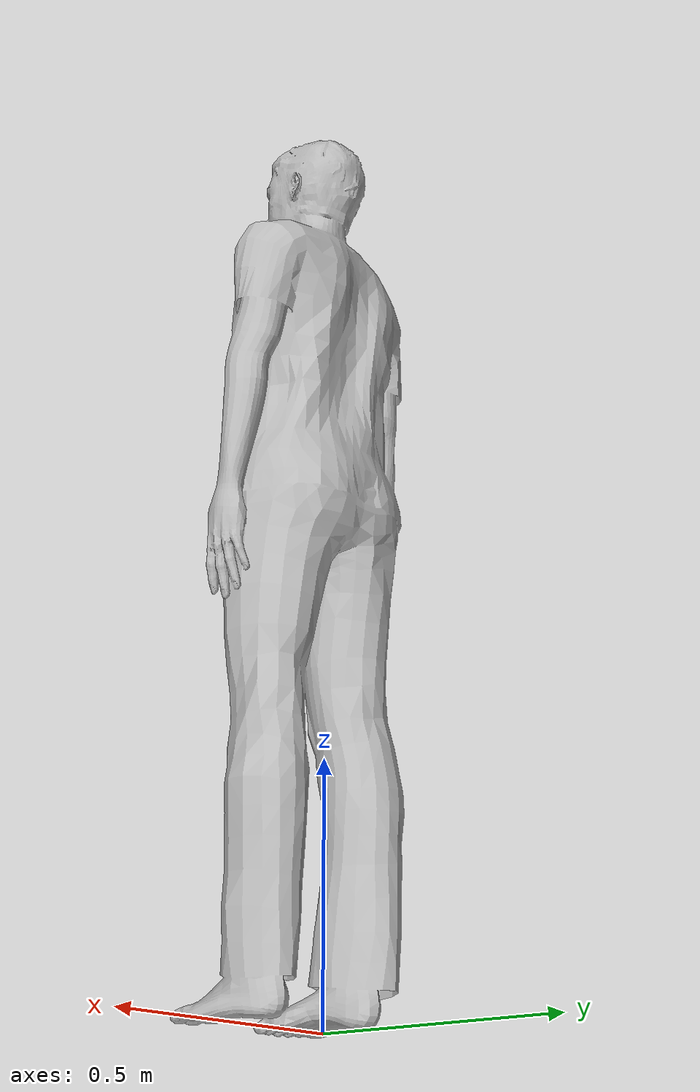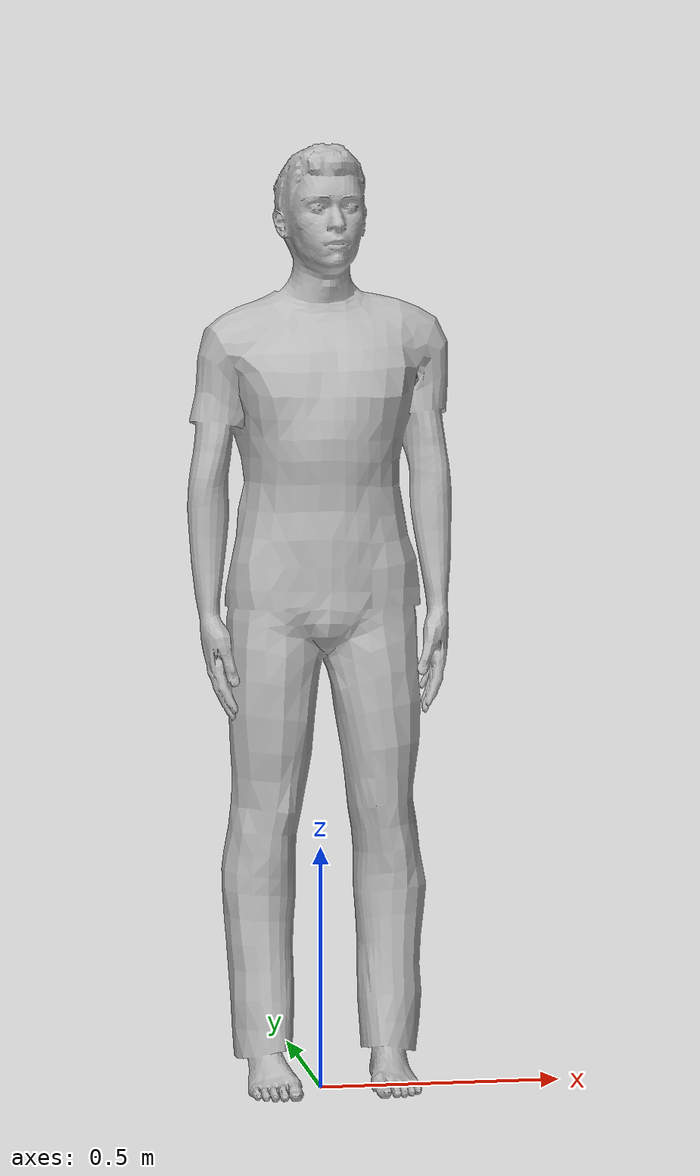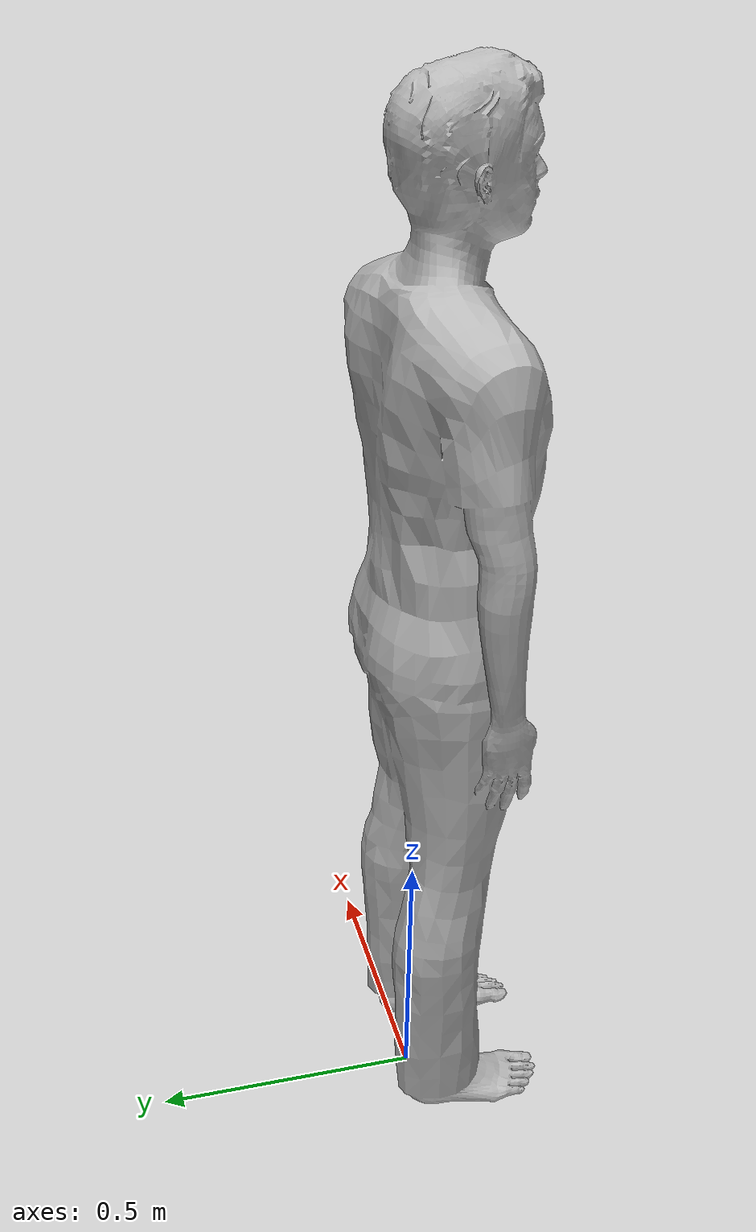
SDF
<?xml version="1.0" ?>
<sdf version="1.6">
  <model name="worker_no_helmet">
    <static>true</static>
    <link name="link">
      <visual name="worker_visual">
        <pose>0 0 0.02 0 0 0</pose>
        <geometry><mesh><uri>model://person_standing/meshes/standing.dae</uri></mesh></geometry>
      </visual>
      <collision name="worker_collision">
        <pose>0 0 0.02 0 0 0</pose>
        <geometry><mesh><uri>model://person_standing/meshes/standing.dae</uri></mesh></geometry>
      </collision>
      <self_collide>0</self_collide><enable_wind>0</enable_wind><kinematic>0</kinematic>
    </link>
  </model>
</sdf>
